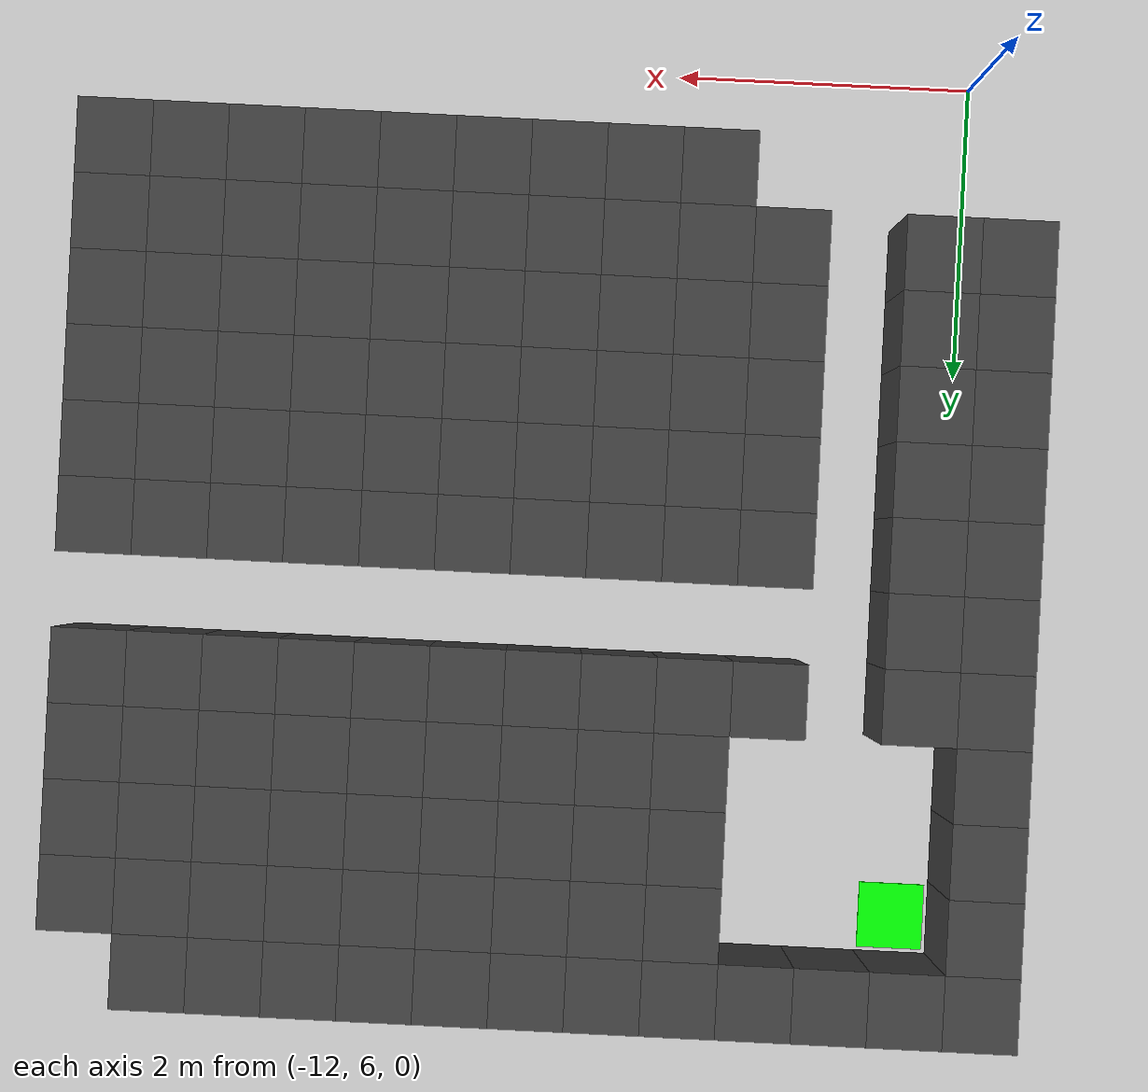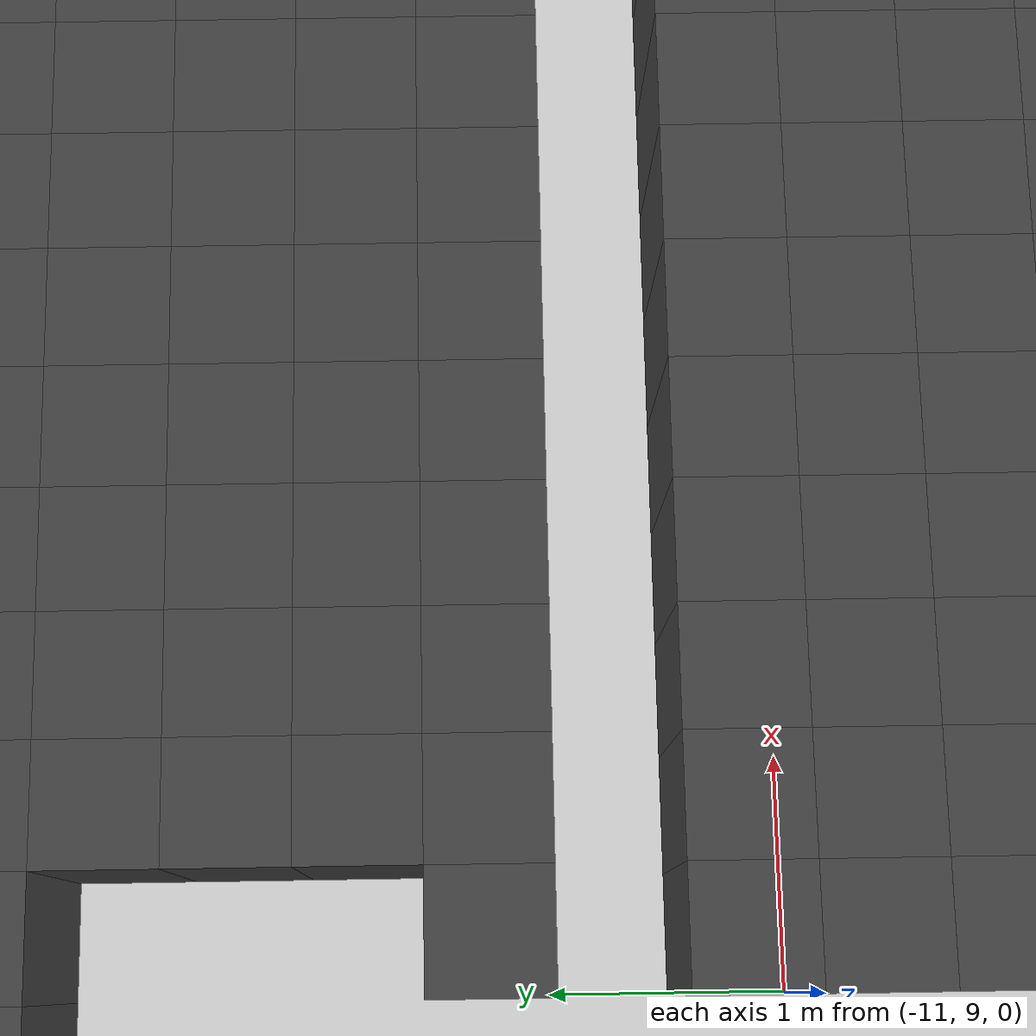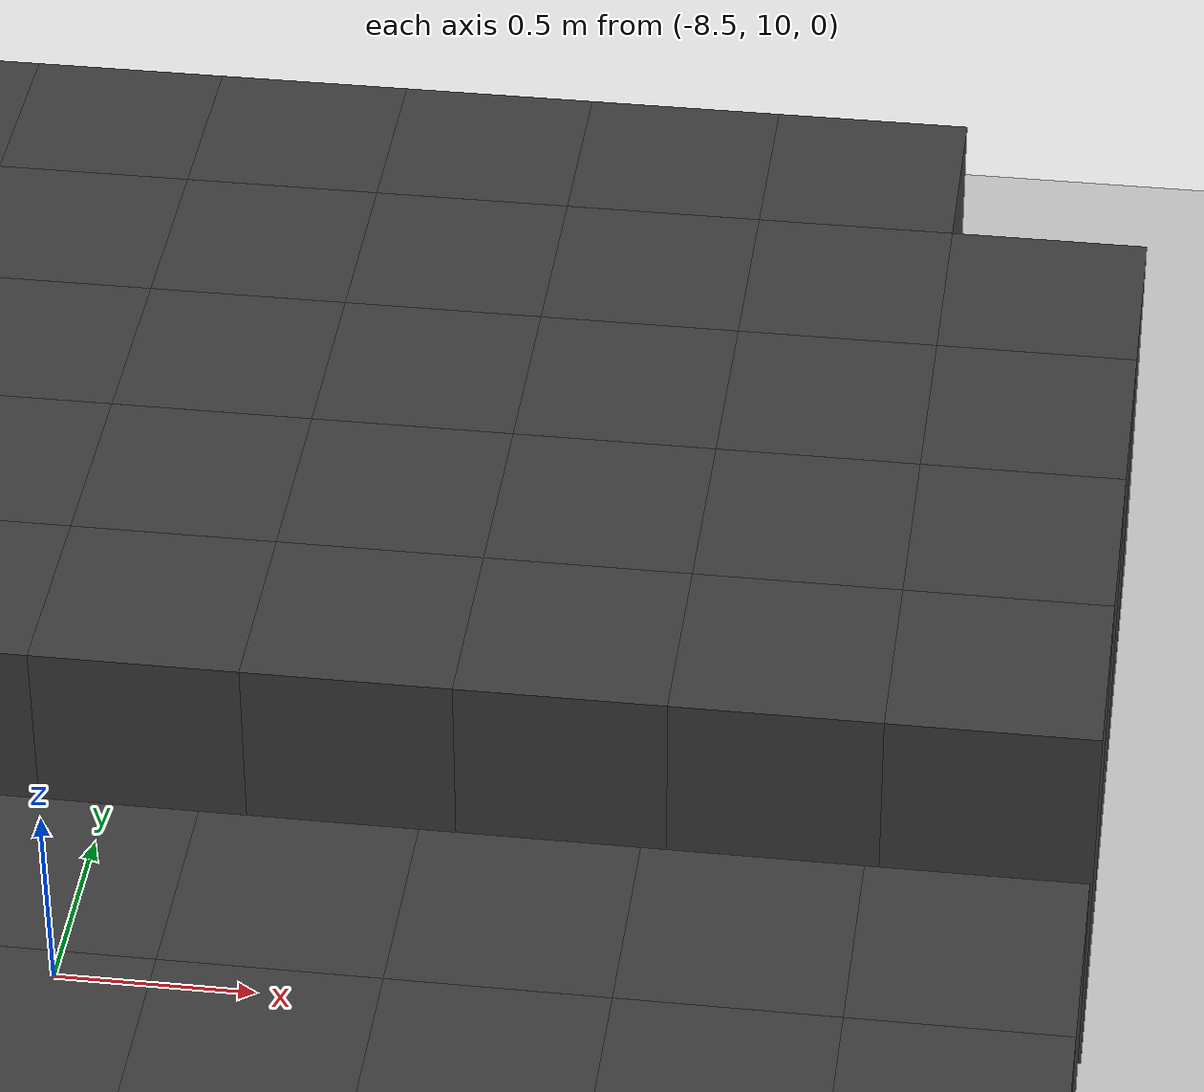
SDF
<sdf version="1.7">
 <world name="map_14190">
  <model name="ground_plane">
   <static>true</static>
   <link name="link">
    <collision name="collision">
     <geometry><plane><normal>0 0 1</normal><size>200 200</size></plane></geometry>
    </collision>
    <visual name="visual">
     <geometry><plane><normal>0 0 1</normal><size>200 200</size></plane></geometry>
     <material><ambient>0.8 0.8 0.8 1</ambient><diffuse>0.8 0.8 0.8 1</diffuse></material>
    </visual>
   </link>
  </model>
  <model name="maze_environment">
   <static>true</static>
   <link name="wall_0">
    <pose>-12.250 12.250 0.500 0 0 0</pose>
    <collision name="col"><geometry><box><size>0.5 0.5 1.0</size></box></geometry></collision>
    <visual name="vis">
     <geometry><box><size>0.5 0.5 1.0</size></box></geometry>
     <material><ambient>0.15 0.15 0.15 1</ambient><diffuse>0.25 0.25 0.25 1</diffuse></material>
    </visual>
   </link>
   <link name="wall_1">
    <pose>-11.750 12.250 0.500 0 0 0</pose>
    <collision name="col"><geometry><box><size>0.5 0.5 1.0</size></box></geometry></collision>
    <visual name="vis">
     <geometry><box><size>0.5 0.5 1.0</size></box></geometry>
     <material><ambient>0.15 0.15 0.15 1</ambient><diffuse>0.25 0.25 0.25 1</diffuse></material>
    </visual>
   </link>
   <link name="wall_2">
    <pose>-11.250 12.250 0.500 0 0 0</pose>
    <collision name="col"><geometry><box><size>0.5 0.5 1.0</size></box></geometry></collision>
    <visual name="vis">
     <geometry><box><size>0.5 0.5 1.0</size></box></geometry>
     <material><ambient>0.15 0.15 0.15 1</ambient><diffuse>0.25 0.25 0.25 1</diffuse></material>
    </visual>
   </link>
   <link name="wall_3">
    <pose>-10.750 12.250 0.500 0 0 0</pose>
    <collision name="col"><geometry><box><size>0.5 0.5 1.0</size></box></geometry></collision>
    <visual name="vis">
     <geometry><box><size>0.5 0.5 1.0</size></box></geometry>
     <material><ambient>0.15 0.15 0.15 1</ambient><diffuse>0.25 0.25 0.25 1</diffuse></material>
    </visual>
   </link>
   <link name="wall_4">
    <pose>-10.250 12.250 0.500 0 0 0</pose>
    <collision name="col"><geometry><box><size>0.5 0.5 1.0</size></box></geometry></collision>
    <visual name="vis">
     <geometry><box><size>0.5 0.5 1.0</size></box></geometry>
     <material><ambient>0.15 0.15 0.15 1</ambient><diffuse>0.25 0.25 0.25 1</diffuse></material>
    </visual>
   </link>
   <link name="wall_5">
    <pose>-9.750 12.250 0.500 0 0 0</pose>
    <collision name="col"><geometry><box><size>0.5 0.5 1.0</size></box></geometry></collision>
    <visual name="vis">
     <geometry><box><size>0.5 0.5 1.0</size></box></geometry>
     <material><ambient>0.15 0.15 0.15 1</ambient><diffuse>0.25 0.25 0.25 1</diffuse></material>
    </visual>
   </link>
   <link name="wall_6">
    <pose>-9.250 12.250 0.500 0 0 0</pose>
    <collision name="col"><geometry><box><size>0.5 0.5 1.0</size></box></geometry></collision>
    <visual name="vis">
     <geometry><box><size>0.5 0.5 1.0</size></box></geometry>
     <material><ambient>0.15 0.15 0.15 1</ambient><diffuse>0.25 0.25 0.25 1</diffuse></material>
    </visual>
   </link>
   <link name="wall_7">
    <pose>-8.750 12.250 0.500 0 0 0</pose>
    <collision name="col"><geometry><box><size>0.5 0.5 1.0</size></box></geometry></collision>
    <visual name="vis">
     <geometry><box><size>0.5 0.5 1.0</size></box></geometry>
     <material><ambient>0.15 0.15 0.15 1</ambient><diffuse>0.25 0.25 0.25 1</diffuse></material>
    </visual>
   </link>
   <link name="wall_8">
    <pose>-8.250 12.250 0.500 0 0 0</pose>
    <collision name="col"><geometry><box><size>0.5 0.5 1.0</size></box></geometry></collision>
    <visual name="vis">
     <geometry><box><size>0.5 0.5 1.0</size></box></geometry>
     <material><ambient>0.15 0.15 0.15 1</ambient><diffuse>0.25 0.25 0.25 1</diffuse></material>
    </visual>
   </link>
   <link name="wall_9">
    <pose>-7.750 12.250 0.500 0 0 0</pose>
    <collision name="col"><geometry><box><size>0.5 0.5 1.0</size></box></geometry></collision>
    <visual name="vis">
     <geometry><box><size>0.5 0.5 1.0</size></box></geometry>
     <material><ambient>0.15 0.15 0.15 1</ambient><diffuse>0.25 0.25 0.25 1</diffuse></material>
    </visual>
   </link>
   <link name="wall_10">
    <pose>-7.250 12.250 0.500 0 0 0</pose>
    <collision name="col"><geometry><box><size>0.5 0.5 1.0</size></box></geometry></collision>
    <visual name="vis">
     <geometry><box><size>0.5 0.5 1.0</size></box></geometry>
     <material><ambient>0.15 0.15 0.15 1</ambient><diffuse>0.25 0.25 0.25 1</diffuse></material>
    </visual>
   </link>
   <link name="wall_11">
    <pose>-6.750 12.250 0.500 0 0 0</pose>
    <collision name="col"><geometry><box><size>0.5 0.5 1.0</size></box></geometry></collision>
    <visual name="vis">
     <geometry><box><size>0.5 0.5 1.0</size></box></geometry>
     <material><ambient>0.15 0.15 0.15 1</ambient><diffuse>0.25 0.25 0.25 1</diffuse></material>
    </visual>
   </link>
   <link name="wall_50">
    <pose>-12.250 11.750 0.500 0 0 0</pose>
    <collision name="col"><geometry><box><size>0.5 0.5 1.0</size></box></geometry></collision>
    <visual name="vis">
     <geometry><box><size>0.5 0.5 1.0</size></box></geometry>
     <material><ambient>0.15 0.15 0.15 1</ambient><diffuse>0.25 0.25 0.25 1</diffuse></material>
    </visual>
   </link>
   <link name="wall_51">
    <pose>-10.250 11.750 0.500 0 0 0</pose>
    <collision name="col"><geometry><box><size>0.5 0.5 1.0</size></box></geometry></collision>
    <visual name="vis">
     <geometry><box><size>0.5 0.5 1.0</size></box></geometry>
     <material><ambient>0.15 0.15 0.15 1</ambient><diffuse>0.25 0.25 0.25 1</diffuse></material>
    </visual>
   </link>
   <link name="wall_52">
    <pose>-9.750 11.750 0.500 0 0 0</pose>
    <collision name="col"><geometry><box><size>0.5 0.5 1.0</size></box></geometry></collision>
    <visual name="vis">
     <geometry><box><size>0.5 0.5 1.0</size></box></geometry>
     <material><ambient>0.15 0.15 0.15 1</ambient><diffuse>0.25 0.25 0.25 1</diffuse></material>
    </visual>
   </link>
   <link name="wall_53">
    <pose>-9.250 11.750 0.500 0 0 0</pose>
    <collision name="col"><geometry><box><size>0.5 0.5 1.0</size></box></geometry></collision>
    <visual name="vis">
     <geometry><box><size>0.5 0.5 1.0</size></box></geometry>
     <material><ambient>0.15 0.15 0.15 1</ambient><diffuse>0.25 0.25 0.25 1</diffuse></material>
    </visual>
   </link>
   <link name="wall_54">
    <pose>-8.750 11.750 0.500 0 0 0</pose>
    <collision name="col"><geometry><box><size>0.5 0.5 1.0</size></box></geometry></collision>
    <visual name="vis">
     <geometry><box><size>0.5 0.5 1.0</size></box></geometry>
     <material><ambient>0.15 0.15 0.15 1</ambient><diffuse>0.25 0.25 0.25 1</diffuse></material>
    </visual>
   </link>
   <link name="wall_55">
    <pose>-8.250 11.750 0.500 0 0 0</pose>
    <collision name="col"><geometry><box><size>0.5 0.5 1.0</size></box></geometry></collision>
    <visual name="vis">
     <geometry><box><size>0.5 0.5 1.0</size></box></geometry>
     <material><ambient>0.15 0.15 0.15 1</ambient><diffuse>0.25 0.25 0.25 1</diffuse></material>
    </visual>
   </link>
   <link name="wall_56">
    <pose>-7.750 11.750 0.500 0 0 0</pose>
    <collision name="col"><geometry><box><size>0.5 0.5 1.0</size></box></geometry></collision>
    <visual name="vis">
     <geometry><box><size>0.5 0.5 1.0</size></box></geometry>
     <material><ambient>0.15 0.15 0.15 1</ambient><diffuse>0.25 0.25 0.25 1</diffuse></material>
    </visual>
   </link>
   <link name="wall_57">
    <pose>-7.250 11.750 0.500 0 0 0</pose>
    <collision name="col"><geometry><box><size>0.5 0.5 1.0</size></box></geometry></collision>
    <visual name="vis">
     <geometry><box><size>0.5 0.5 1.0</size></box></geometry>
     <material><ambient>0.15 0.15 0.15 1</ambient><diffuse>0.25 0.25 0.25 1</diffuse></material>
    </visual>
   </link>
   <link name="wall_58">
    <pose>-6.750 11.750 0.500 0 0 0</pose>
    <collision name="col"><geometry><box><size>0.5 0.5 1.0</size></box></geometry></collision>
    <visual name="vis">
     <geometry><box><size>0.5 0.5 1.0</size></box></geometry>
     <material><ambient>0.15 0.15 0.15 1</ambient><diffuse>0.25 0.25 0.25 1</diffuse></material>
    </visual>
   </link>
   <link name="wall_59">
    <pose>-6.250 11.750 0.500 0 0 0</pose>
    <collision name="col"><geometry><box><size>0.5 0.5 1.0</size></box></geometry></collision>
    <visual name="vis">
     <geometry><box><size>0.5 0.5 1.0</size></box></geometry>
     <material><ambient>0.15 0.15 0.15 1</ambient><diffuse>0.25 0.25 0.25 1</diffuse></material>
    </visual>
   </link>
   <link name="wall_97">
    <pose>-12.250 11.250 0.500 0 0 0</pose>
    <collision name="col"><geometry><box><size>0.5 0.5 1.0</size></box></geometry></collision>
    <visual name="vis">
     <geometry><box><size>0.5 0.5 1.0</size></box></geometry>
     <material><ambient>0.15 0.15 0.15 1</ambient><diffuse>0.25 0.25 0.25 1</diffuse></material>
    </visual>
   </link>
   <link name="wall_98">
    <pose>-10.250 11.250 0.500 0 0 0</pose>
    <collision name="col"><geometry><box><size>0.5 0.5 1.0</size></box></geometry></collision>
    <visual name="vis">
     <geometry><box><size>0.5 0.5 1.0</size></box></geometry>
     <material><ambient>0.15 0.15 0.15 1</ambient><diffuse>0.25 0.25 0.25 1</diffuse></material>
    </visual>
   </link>
   <link name="wall_99">
    <pose>-9.750 11.250 0.500 0 0 0</pose>
    <collision name="col"><geometry><box><size>0.5 0.5 1.0</size></box></geometry></collision>
    <visual name="vis">
     <geometry><box><size>0.5 0.5 1.0</size></box></geometry>
     <material><ambient>0.15 0.15 0.15 1</ambient><diffuse>0.25 0.25 0.25 1</diffuse></material>
    </visual>
   </link>
   <link name="wall_100">
    <pose>-9.250 11.250 0.500 0 0 0</pose>
    <collision name="col"><geometry><box><size>0.5 0.5 1.0</size></box></geometry></collision>
    <visual name="vis">
     <geometry><box><size>0.5 0.5 1.0</size></box></geometry>
     <material><ambient>0.15 0.15 0.15 1</ambient><diffuse>0.25 0.25 0.25 1</diffuse></material>
    </visual>
   </link>
   <link name="wall_101">
    <pose>-8.750 11.250 0.500 0 0 0</pose>
    <collision name="col"><geometry><box><size>0.5 0.5 1.0</size></box></geometry></collision>
    <visual name="vis">
     <geometry><box><size>0.5 0.5 1.0</size></box></geometry>
     <material><ambient>0.15 0.15 0.15 1</ambient><diffuse>0.25 0.25 0.25 1</diffuse></material>
    </visual>
   </link>
   <link name="wall_102">
    <pose>-8.250 11.250 0.500 0 0 0</pose>
    <collision name="col"><geometry><box><size>0.5 0.5 1.0</size></box></geometry></collision>
    <visual name="vis">
     <geometry><box><size>0.5 0.5 1.0</size></box></geometry>
     <material><ambient>0.15 0.15 0.15 1</ambient><diffuse>0.25 0.25 0.25 1</diffuse></material>
    </visual>
   </link>
   <link name="wall_103">
    <pose>-7.750 11.250 0.500 0 0 0</pose>
    <collision name="col"><geometry><box><size>0.5 0.5 1.0</size></box></geometry></collision>
    <visual name="vis">
     <geometry><box><size>0.5 0.5 1.0</size></box></geometry>
     <material><ambient>0.15 0.15 0.15 1</ambient><diffuse>0.25 0.25 0.25 1</diffuse></material>
    </visual>
   </link>
   <link name="wall_104">
    <pose>-7.250 11.250 0.500 0 0 0</pose>
    <collision name="col"><geometry><box><size>0.5 0.5 1.0</size></box></geometry></collision>
    <visual name="vis">
     <geometry><box><size>0.5 0.5 1.0</size></box></geometry>
     <material><ambient>0.15 0.15 0.15 1</ambient><diffuse>0.25 0.25 0.25 1</diffuse></material>
    </visual>
   </link>
   <link name="wall_105">
    <pose>-6.750 11.250 0.500 0 0 0</pose>
    <collision name="col"><geometry><box><size>0.5 0.5 1.0</size></box></geometry></collision>
    <visual name="vis">
     <geometry><box><size>0.5 0.5 1.0</size></box></geometry>
     <material><ambient>0.15 0.15 0.15 1</ambient><diffuse>0.25 0.25 0.25 1</diffuse></material>
    </visual>
   </link>
   <link name="wall_106">
    <pose>-6.250 11.250 0.500 0 0 0</pose>
    <collision name="col"><geometry><box><size>0.5 0.5 1.0</size></box></geometry></collision>
    <visual name="vis">
     <geometry><box><size>0.5 0.5 1.0</size></box></geometry>
     <material><ambient>0.15 0.15 0.15 1</ambient><diffuse>0.25 0.25 0.25 1</diffuse></material>
    </visual>
   </link>
   <link name="wall_140">
    <pose>-12.250 10.750 0.500 0 0 0</pose>
    <collision name="col"><geometry><box><size>0.5 0.5 1.0</size></box></geometry></collision>
    <visual name="vis">
     <geometry><box><size>0.5 0.5 1.0</size></box></geometry>
     <material><ambient>0.15 0.15 0.15 1</ambient><diffuse>0.25 0.25 0.25 1</diffuse></material>
    </visual>
   </link>
   <link name="wall_141">
    <pose>-10.250 10.750 0.500 0 0 0</pose>
    <collision name="col"><geometry><box><size>0.5 0.5 1.0</size></box></geometry></collision>
    <visual name="vis">
     <geometry><box><size>0.5 0.5 1.0</size></box></geometry>
     <material><ambient>0.15 0.15 0.15 1</ambient><diffuse>0.25 0.25 0.25 1</diffuse></material>
    </visual>
   </link>
   <link name="wall_142">
    <pose>-9.750 10.750 0.500 0 0 0</pose>
    <collision name="col"><geometry><box><size>0.5 0.5 1.0</size></box></geometry></collision>
    <visual name="vis">
     <geometry><box><size>0.5 0.5 1.0</size></box></geometry>
     <material><ambient>0.15 0.15 0.15 1</ambient><diffuse>0.25 0.25 0.25 1</diffuse></material>
    </visual>
   </link>
   <link name="wall_143">
    <pose>-9.250 10.750 0.500 0 0 0</pose>
    <collision name="col"><geometry><box><size>0.5 0.5 1.0</size></box></geometry></collision>
    <visual name="vis">
     <geometry><box><size>0.5 0.5 1.0</size></box></geometry>
     <material><ambient>0.15 0.15 0.15 1</ambient><diffuse>0.25 0.25 0.25 1</diffuse></material>
    </visual>
   </link>
   <link name="wall_144">
    <pose>-8.750 10.750 0.500 0 0 0</pose>
    <collision name="col"><geometry><box><size>0.5 0.5 1.0</size></box></geometry></collision>
    <visual name="vis">
     <geometry><box><size>0.5 0.5 1.0</size></box></geometry>
     <material><ambient>0.15 0.15 0.15 1</ambient><diffuse>0.25 0.25 0.25 1</diffuse></material>
    </visual>
   </link>
   <link name="wall_145">
    <pose>-8.250 10.750 0.500 0 0 0</pose>
    <collision name="col"><geometry><box><size>0.5 0.5 1.0</size></box></geometry></collision>
    <visual name="vis">
     <geometry><box><size>0.5 0.5 1.0</size></box></geometry>
     <material><ambient>0.15 0.15 0.15 1</ambient><diffuse>0.25 0.25 0.25 1</diffuse></material>
    </visual>
   </link>
   <link name="wall_146">
    <pose>-7.750 10.750 0.500 0 0 0</pose>
    <collision name="col"><geometry><box><size>0.5 0.5 1.0</size></box></geometry></collision>
    <visual name="vis">
     <geometry><box><size>0.5 0.5 1.0</size></box></geometry>
     <material><ambient>0.15 0.15 0.15 1</ambient><diffuse>0.25 0.25 0.25 1</diffuse></material>
    </visual>
   </link>
   <link name="wall_147">
    <pose>-7.250 10.750 0.500 0 0 0</pose>
    <collision name="col"><geometry><box><size>0.5 0.5 1.0</size></box></geometry></collision>
    <visual name="vis">
     <geometry><box><size>0.5 0.5 1.0</size></box></geometry>
     <material><ambient>0.15 0.15 0.15 1</ambient><diffuse>0.25 0.25 0.25 1</diffuse></material>
    </visual>
   </link>
   <link name="wall_148">
    <pose>-6.750 10.750 0.500 0 0 0</pose>
    <collision name="col"><geometry><box><size>0.5 0.5 1.0</size></box></geometry></collision>
    <visual name="vis">
     <geometry><box><size>0.5 0.5 1.0</size></box></geometry>
     <material><ambient>0.15 0.15 0.15 1</ambient><diffuse>0.25 0.25 0.25 1</diffuse></material>
    </visual>
   </link>
   <link name="wall_149">
    <pose>-6.250 10.750 0.500 0 0 0</pose>
    <collision name="col"><geometry><box><size>0.5 0.5 1.0</size></box></geometry></collision>
    <visual name="vis">
     <geometry><box><size>0.5 0.5 1.0</size></box></geometry>
     <material><ambient>0.15 0.15 0.15 1</ambient><diffuse>0.25 0.25 0.25 1</diffuse></material>
    </visual>
   </link>
   <link name="wall_183">
    <pose>-12.250 10.250 0.500 0 0 0</pose>
    <collision name="col"><geometry><box><size>0.5 0.5 1.0</size></box></geometry></collision>
    <visual name="vis">
     <geometry><box><size>0.5 0.5 1.0</size></box></geometry>
     <material><ambient>0.15 0.15 0.15 1</ambient><diffuse>0.25 0.25 0.25 1</diffuse></material>
    </visual>
   </link>
   <link name="wall_184">
    <pose>-11.750 10.250 0.500 0 0 0</pose>
    <collision name="col"><geometry><box><size>0.5 0.5 1.0</size></box></geometry></collision>
    <visual name="vis">
     <geometry><box><size>0.5 0.5 1.0</size></box></geometry>
     <material><ambient>0.15 0.15 0.15 1</ambient><diffuse>0.25 0.25 0.25 1</diffuse></material>
    </visual>
   </link>
   <link name="wall_185">
    <pose>-10.750 10.250 0.500 0 0 0</pose>
    <collision name="col"><geometry><box><size>0.5 0.5 1.0</size></box></geometry></collision>
    <visual name="vis">
     <geometry><box><size>0.5 0.5 1.0</size></box></geometry>
     <material><ambient>0.15 0.15 0.15 1</ambient><diffuse>0.25 0.25 0.25 1</diffuse></material>
    </visual>
   </link>
   <link name="wall_186">
    <pose>-10.250 10.250 0.500 0 0 0</pose>
    <collision name="col"><geometry><box><size>0.5 0.5 1.0</size></box></geometry></collision>
    <visual name="vis">
     <geometry><box><size>0.5 0.5 1.0</size></box></geometry>
     <material><ambient>0.15 0.15 0.15 1</ambient><diffuse>0.25 0.25 0.25 1</diffuse></material>
    </visual>
   </link>
   <link name="wall_187">
    <pose>-9.750 10.250 0.500 0 0 0</pose>
    <collision name="col"><geometry><box><size>0.5 0.5 1.0</size></box></geometry></collision>
    <visual name="vis">
     <geometry><box><size>0.5 0.5 1.0</size></box></geometry>
     <material><ambient>0.15 0.15 0.15 1</ambient><diffuse>0.25 0.25 0.25 1</diffuse></material>
    </visual>
   </link>
   <link name="wall_188">
    <pose>-9.250 10.250 0.500 0 0 0</pose>
    <collision name="col"><geometry><box><size>0.5 0.5 1.0</size></box></geometry></collision>
    <visual name="vis">
     <geometry><box><size>0.5 0.5 1.0</size></box></geometry>
     <material><ambient>0.15 0.15 0.15 1</ambient><diffuse>0.25 0.25 0.25 1</diffuse></material>
    </visual>
   </link>
   <link name="wall_189">
    <pose>-8.750 10.250 0.500 0 0 0</pose>
    <collision name="col"><geometry><box><size>0.5 0.5 1.0</size></box></geometry></collision>
    <visual name="vis">
     <geometry><box><size>0.5 0.5 1.0</size></box></geometry>
     <material><ambient>0.15 0.15 0.15 1</ambient><diffuse>0.25 0.25 0.25 1</diffuse></material>
    </visual>
   </link>
   <link name="wall_190">
    <pose>-8.250 10.250 0.500 0 0 0</pose>
    <collision name="col"><geometry><box><size>0.5 0.5 1.0</size></box></geometry></collision>
    <visual name="vis">
     <geometry><box><size>0.5 0.5 1.0</size></box></geometry>
     <material><ambient>0.15 0.15 0.15 1</ambient><diffuse>0.25 0.25 0.25 1</diffuse></material>
    </visual>
   </link>
   <link name="wall_191">
    <pose>-7.750 10.250 0.500 0 0 0</pose>
    <collision name="col"><geometry><box><size>0.5 0.5 1.0</size></box></geometry></collision>
    <visual name="vis">
     <geometry><box><size>0.5 0.5 1.0</size></box></geometry>
     <material><ambient>0.15 0.15 0.15 1</ambient><diffuse>0.25 0.25 0.25 1</diffuse></material>
    </visual>
   </link>
   <link name="wall_192">
    <pose>-7.250 10.250 0.500 0 0 0</pose>
    <collision name="col"><geometry><box><size>0.5 0.5 1.0</size></box></geometry></collision>
    <visual name="vis">
     <geometry><box><size>0.5 0.5 1.0</size></box></geometry>
     <material><ambient>0.15 0.15 0.15 1</ambient><diffuse>0.25 0.25 0.25 1</diffuse></material>
    </visual>
   </link>
   <link name="wall_193">
    <pose>-6.750 10.250 0.500 0 0 0</pose>
    <collision name="col"><geometry><box><size>0.5 0.5 1.0</size></box></geometry></collision>
    <visual name="vis">
     <geometry><box><size>0.5 0.5 1.0</size></box></geometry>
     <material><ambient>0.15 0.15 0.15 1</ambient><diffuse>0.25 0.25 0.25 1</diffuse></material>
    </visual>
   </link>
   <link name="wall_194">
    <pose>-6.250 10.250 0.500 0 0 0</pose>
    <collision name="col"><geometry><box><size>0.5 0.5 1.0</size></box></geometry></collision>
    <visual name="vis">
     <geometry><box><size>0.5 0.5 1.0</size></box></geometry>
     <material><ambient>0.15 0.15 0.15 1</ambient><diffuse>0.25 0.25 0.25 1</diffuse></material>
    </visual>
   </link>
   <link name="wall_228">
    <pose>-12.250 9.750 0.500 0 0 0</pose>
    <collision name="col"><geometry><box><size>0.5 0.5 1.0</size></box></geometry></collision>
    <visual name="vis">
     <geometry><box><size>0.5 0.5 1.0</size></box></geometry>
     <material><ambient>0.15 0.15 0.15 1</ambient><diffuse>0.25 0.25 0.25 1</diffuse></material>
    </visual>
   </link>
   <link name="wall_229">
    <pose>-11.750 9.750 0.500 0 0 0</pose>
    <collision name="col"><geometry><box><size>0.5 0.5 1.0</size></box></geometry></collision>
    <visual name="vis">
     <geometry><box><size>0.5 0.5 1.0</size></box></geometry>
     <material><ambient>0.15 0.15 0.15 1</ambient><diffuse>0.25 0.25 0.25 1</diffuse></material>
    </visual>
   </link>
   <link name="wall_257">
    <pose>-12.250 9.250 0.500 0 0 0</pose>
    <collision name="col"><geometry><box><size>0.5 0.5 1.0</size></box></geometry></collision>
    <visual name="vis">
     <geometry><box><size>0.5 0.5 1.0</size></box></geometry>
     <material><ambient>0.15 0.15 0.15 1</ambient><diffuse>0.25 0.25 0.25 1</diffuse></material>
    </visual>
   </link>
   <link name="wall_258">
    <pose>-11.750 9.250 0.500 0 0 0</pose>
    <collision name="col"><geometry><box><size>0.5 0.5 1.0</size></box></geometry></collision>
    <visual name="vis">
     <geometry><box><size>0.5 0.5 1.0</size></box></geometry>
     <material><ambient>0.15 0.15 0.15 1</ambient><diffuse>0.25 0.25 0.25 1</diffuse></material>
    </visual>
   </link>
   <link name="wall_259">
    <pose>-10.750 9.250 0.500 0 0 0</pose>
    <collision name="col"><geometry><box><size>0.5 0.5 1.0</size></box></geometry></collision>
    <visual name="vis">
     <geometry><box><size>0.5 0.5 1.0</size></box></geometry>
     <material><ambient>0.15 0.15 0.15 1</ambient><diffuse>0.25 0.25 0.25 1</diffuse></material>
    </visual>
   </link>
   <link name="wall_260">
    <pose>-10.250 9.250 0.500 0 0 0</pose>
    <collision name="col"><geometry><box><size>0.5 0.5 1.0</size></box></geometry></collision>
    <visual name="vis">
     <geometry><box><size>0.5 0.5 1.0</size></box></geometry>
     <material><ambient>0.15 0.15 0.15 1</ambient><diffuse>0.25 0.25 0.25 1</diffuse></material>
    </visual>
   </link>
   <link name="wall_261">
    <pose>-9.750 9.250 0.500 0 0 0</pose>
    <collision name="col"><geometry><box><size>0.5 0.5 1.0</size></box></geometry></collision>
    <visual name="vis">
     <geometry><box><size>0.5 0.5 1.0</size></box></geometry>
     <material><ambient>0.15 0.15 0.15 1</ambient><diffuse>0.25 0.25 0.25 1</diffuse></material>
    </visual>
   </link>
   <link name="wall_262">
    <pose>-9.250 9.250 0.500 0 0 0</pose>
    <collision name="col"><geometry><box><size>0.5 0.5 1.0</size></box></geometry></collision>
    <visual name="vis">
     <geometry><box><size>0.5 0.5 1.0</size></box></geometry>
     <material><ambient>0.15 0.15 0.15 1</ambient><diffuse>0.25 0.25 0.25 1</diffuse></material>
    </visual>
   </link>
   <link name="wall_263">
    <pose>-8.750 9.250 0.500 0 0 0</pose>
    <collision name="col"><geometry><box><size>0.5 0.5 1.0</size></box></geometry></collision>
    <visual name="vis">
     <geometry><box><size>0.5 0.5 1.0</size></box></geometry>
     <material><ambient>0.15 0.15 0.15 1</ambient><diffuse>0.25 0.25 0.25 1</diffuse></material>
    </visual>
   </link>
   <link name="wall_264">
    <pose>-8.250 9.250 0.500 0 0 0</pose>
    <collision name="col"><geometry><box><size>0.5 0.5 1.0</size></box></geometry></collision>
    <visual name="vis">
     <geometry><box><size>0.5 0.5 1.0</size></box></geometry>
     <material><ambient>0.15 0.15 0.15 1</ambient><diffuse>0.25 0.25 0.25 1</diffuse></material>
    </visual>
   </link>
   <link name="wall_265">
    <pose>-7.750 9.250 0.500 0 0 0</pose>
    <collision name="col"><geometry><box><size>0.5 0.5 1.0</size></box></geometry></collision>
    <visual name="vis">
     <geometry><box><size>0.5 0.5 1.0</size></box></geometry>
     <material><ambient>0.15 0.15 0.15 1</ambient><diffuse>0.25 0.25 0.25 1</diffuse></material>
    </visual>
   </link>
   <link name="wall_266">
    <pose>-7.250 9.250 0.500 0 0 0</pose>
    <collision name="col"><geometry><box><size>0.5 0.5 1.0</size></box></geometry></collision>
    <visual name="vis">
     <geometry><box><size>0.5 0.5 1.0</size></box></geometry>
     <material><ambient>0.15 0.15 0.15 1</ambient><diffuse>0.25 0.25 0.25 1</diffuse></material>
    </visual>
   </link>
   <link name="wall_267">
    <pose>-6.750 9.250 0.500 0 0 0</pose>
    <collision name="col"><geometry><box><size>0.5 0.5 1.0</size></box></geometry></collision>
    <visual name="vis">
     <geometry><box><size>0.5 0.5 1.0</size></box></geometry>
     <material><ambient>0.15 0.15 0.15 1</ambient><diffuse>0.25 0.25 0.25 1</diffuse></material>
    </visual>
   </link>
   <link name="wall_268">
    <pose>-6.250 9.250 0.500 0 0 0</pose>
    <collision name="col"><geometry><box><size>0.5 0.5 1.0</size></box></geometry></collision>
    <visual name="vis">
     <geometry><box><size>0.5 0.5 1.0</size></box></geometry>
     <material><ambient>0.15 0.15 0.15 1</ambient><diffuse>0.25 0.25 0.25 1</diffuse></material>
    </visual>
   </link>
   <link name="wall_297">
    <pose>-12.250 8.750 0.500 0 0 0</pose>
    <collision name="col"><geometry><box><size>0.5 0.5 1.0</size></box></geometry></collision>
    <visual name="vis">
     <geometry><box><size>0.5 0.5 1.0</size></box></geometry>
     <material><ambient>0.15 0.15 0.15 1</ambient><diffuse>0.25 0.25 0.25 1</diffuse></material>
    </visual>
   </link>
   <link name="wall_298">
    <pose>-11.750 8.750 0.500 0 0 0</pose>
    <collision name="col"><geometry><box><size>0.5 0.5 1.0</size></box></geometry></collision>
    <visual name="vis">
     <geometry><box><size>0.5 0.5 1.0</size></box></geometry>
     <material><ambient>0.15 0.15 0.15 1</ambient><diffuse>0.25 0.25 0.25 1</diffuse></material>
    </visual>
   </link>
   <link name="wall_299">
    <pose>-10.750 8.750 0.500 0 0 0</pose>
    <collision name="col"><geometry><box><size>0.5 0.5 1.0</size></box></geometry></collision>
    <visual name="vis">
     <geometry><box><size>0.5 0.5 1.0</size></box></geometry>
     <material><ambient>0.15 0.15 0.15 1</ambient><diffuse>0.25 0.25 0.25 1</diffuse></material>
    </visual>
   </link>
   <link name="wall_300">
    <pose>-10.250 8.750 0.500 0 0 0</pose>
    <collision name="col"><geometry><box><size>0.5 0.5 1.0</size></box></geometry></collision>
    <visual name="vis">
     <geometry><box><size>0.5 0.5 1.0</size></box></geometry>
     <material><ambient>0.15 0.15 0.15 1</ambient><diffuse>0.25 0.25 0.25 1</diffuse></material>
    </visual>
   </link>
   <link name="wall_301">
    <pose>-9.750 8.750 0.500 0 0 0</pose>
    <collision name="col"><geometry><box><size>0.5 0.5 1.0</size></box></geometry></collision>
    <visual name="vis">
     <geometry><box><size>0.5 0.5 1.0</size></box></geometry>
     <material><ambient>0.15 0.15 0.15 1</ambient><diffuse>0.25 0.25 0.25 1</diffuse></material>
    </visual>
   </link>
   <link name="wall_302">
    <pose>-9.250 8.750 0.500 0 0 0</pose>
    <collision name="col"><geometry><box><size>0.5 0.5 1.0</size></box></geometry></collision>
    <visual name="vis">
     <geometry><box><size>0.5 0.5 1.0</size></box></geometry>
     <material><ambient>0.15 0.15 0.15 1</ambient><diffuse>0.25 0.25 0.25 1</diffuse></material>
    </visual>
   </link>
   <link name="wall_303">
    <pose>-8.750 8.750 0.500 0 0 0</pose>
    <collision name="col"><geometry><box><size>0.5 0.5 1.0</size></box></geometry></collision>
    <visual name="vis">
     <geometry><box><size>0.5 0.5 1.0</size></box></geometry>
     <material><ambient>0.15 0.15 0.15 1</ambient><diffuse>0.25 0.25 0.25 1</diffuse></material>
    </visual>
   </link>
   <link name="wall_304">
    <pose>-8.250 8.750 0.500 0 0 0</pose>
    <collision name="col"><geometry><box><size>0.5 0.5 1.0</size></box></geometry></collision>
    <visual name="vis">
     <geometry><box><size>0.5 0.5 1.0</size></box></geometry>
     <material><ambient>0.15 0.15 0.15 1</ambient><diffuse>0.25 0.25 0.25 1</diffuse></material>
    </visual>
   </link>
   <link name="wall_305">
    <pose>-7.750 8.750 0.500 0 0 0</pose>
    <collision name="col"><geometry><box><size>0.5 0.5 1.0</size></box></geometry></collision>
    <visual name="vis">
     <geometry><box><size>0.5 0.5 1.0</size></box></geometry>
     <material><ambient>0.15 0.15 0.15 1</ambient><diffuse>0.25 0.25 0.25 1</diffuse></material>
    </visual>
   </link>
   <link name="wall_306">
    <pose>-7.250 8.750 0.500 0 0 0</pose>
    <collision name="col"><geometry><box><size>0.5 0.5 1.0</size></box></geometry></collision>
    <visual name="vis">
     <geometry><box><size>0.5 0.5 1.0</size></box></geometry>
     <material><ambient>0.15 0.15 0.15 1</ambient><diffuse>0.25 0.25 0.25 1</diffuse></material>
    </visual>
   </link>
   <link name="wall_307">
    <pose>-6.750 8.750 0.500 0 0 0</pose>
    <collision name="col"><geometry><box><size>0.5 0.5 1.0</size></box></geometry></collision>
    <visual name="vis">
     <geometry><box><size>0.5 0.5 1.0</size></box></geometry>
     <material><ambient>0.15 0.15 0.15 1</ambient><diffuse>0.25 0.25 0.25 1</diffuse></material>
    </visual>
   </link>
   <link name="wall_308">
    <pose>-6.250 8.750 0.500 0 0 0</pose>
    <collision name="col"><geometry><box><size>0.5 0.5 1.0</size></box></geometry></collision>
    <visual name="vis">
     <geometry><box><size>0.5 0.5 1.0</size></box></geometry>
     <material><ambient>0.15 0.15 0.15 1</ambient><diffuse>0.25 0.25 0.25 1</diffuse></material>
    </visual>
   </link>
   <link name="wall_331">
    <pose>-12.250 8.250 0.500 0 0 0</pose>
    <collision name="col"><geometry><box><size>0.5 0.5 1.0</size></box></geometry></collision>
    <visual name="vis">
     <geometry><box><size>0.5 0.5 1.0</size></box></geometry>
     <material><ambient>0.15 0.15 0.15 1</ambient><diffuse>0.25 0.25 0.25 1</diffuse></material>
    </visual>
   </link>
   <link name="wall_332">
    <pose>-11.750 8.250 0.500 0 0 0</pose>
    <collision name="col"><geometry><box><size>0.5 0.5 1.0</size></box></geometry></collision>
    <visual name="vis">
     <geometry><box><size>0.5 0.5 1.0</size></box></geometry>
     <material><ambient>0.15 0.15 0.15 1</ambient><diffuse>0.25 0.25 0.25 1</diffuse></material>
    </visual>
   </link>
   <link name="wall_333">
    <pose>-10.750 8.250 0.500 0 0 0</pose>
    <collision name="col"><geometry><box><size>0.5 0.5 1.0</size></box></geometry></collision>
    <visual name="vis">
     <geometry><box><size>0.5 0.5 1.0</size></box></geometry>
     <material><ambient>0.15 0.15 0.15 1</ambient><diffuse>0.25 0.25 0.25 1</diffuse></material>
    </visual>
   </link>
   <link name="wall_334">
    <pose>-10.250 8.250 0.500 0 0 0</pose>
    <collision name="col"><geometry><box><size>0.5 0.5 1.0</size></box></geometry></collision>
    <visual name="vis">
     <geometry><box><size>0.5 0.5 1.0</size></box></geometry>
     <material><ambient>0.15 0.15 0.15 1</ambient><diffuse>0.25 0.25 0.25 1</diffuse></material>
    </visual>
   </link>
   <link name="wall_335">
    <pose>-9.750 8.250 0.500 0 0 0</pose>
    <collision name="col"><geometry><box><size>0.5 0.5 1.0</size></box></geometry></collision>
    <visual name="vis">
     <geometry><box><size>0.5 0.5 1.0</size></box></geometry>
     <material><ambient>0.15 0.15 0.15 1</ambient><diffuse>0.25 0.25 0.25 1</diffuse></material>
    </visual>
   </link>
   <link name="wall_336">
    <pose>-9.250 8.250 0.500 0 0 0</pose>
    <collision name="col"><geometry><box><size>0.5 0.5 1.0</size></box></geometry></collision>
    <visual name="vis">
     <geometry><box><size>0.5 0.5 1.0</size></box></geometry>
     <material><ambient>0.15 0.15 0.15 1</ambient><diffuse>0.25 0.25 0.25 1</diffuse></material>
    </visual>
   </link>
   <link name="wall_337">
    <pose>-8.750 8.250 0.500 0 0 0</pose>
    <collision name="col"><geometry><box><size>0.5 0.5 1.0</size></box></geometry></collision>
    <visual name="vis">
     <geometry><box><size>0.5 0.5 1.0</size></box></geometry>
     <material><ambient>0.15 0.15 0.15 1</ambient><diffuse>0.25 0.25 0.25 1</diffuse></material>
    </visual>
   </link>
   <link name="wall_338">
    <pose>-8.250 8.250 0.500 0 0 0</pose>
    <collision name="col"><geometry><box><size>0.5 0.5 1.0</size></box></geometry></collision>
    <visual name="vis">
     <geometry><box><size>0.5 0.5 1.0</size></box></geometry>
     <material><ambient>0.15 0.15 0.15 1</ambient><diffuse>0.25 0.25 0.25 1</diffuse></material>
    </visual>
   </link>
   <link name="wall_339">
    <pose>-7.750 8.250 0.500 0 0 0</pose>
    <collision name="col"><geometry><box><size>0.5 0.5 1.0</size></box></geometry></collision>
    <visual name="vis">
     <geometry><box><size>0.5 0.5 1.0</size></box></geometry>
     <material><ambient>0.15 0.15 0.15 1</ambient><diffuse>0.25 0.25 0.25 1</diffuse></material>
    </visual>
   </link>
   <link name="wall_340">
    <pose>-7.250 8.250 0.500 0 0 0</pose>
    <collision name="col"><geometry><box><size>0.5 0.5 1.0</size></box></geometry></collision>
    <visual name="vis">
     <geometry><box><size>0.5 0.5 1.0</size></box></geometry>
     <material><ambient>0.15 0.15 0.15 1</ambient><diffuse>0.25 0.25 0.25 1</diffuse></material>
    </visual>
   </link>
   <link name="wall_341">
    <pose>-6.750 8.250 0.500 0 0 0</pose>
    <collision name="col"><geometry><box><size>0.5 0.5 1.0</size></box></geometry></collision>
    <visual name="vis">
     <geometry><box><size>0.5 0.5 1.0</size></box></geometry>
     <material><ambient>0.15 0.15 0.15 1</ambient><diffuse>0.25 0.25 0.25 1</diffuse></material>
    </visual>
   </link>
   <link name="wall_342">
    <pose>-6.250 8.250 0.500 0 0 0</pose>
    <collision name="col"><geometry><box><size>0.5 0.5 1.0</size></box></geometry></collision>
    <visual name="vis">
     <geometry><box><size>0.5 0.5 1.0</size></box></geometry>
     <material><ambient>0.15 0.15 0.15 1</ambient><diffuse>0.25 0.25 0.25 1</diffuse></material>
    </visual>
   </link>
   <link name="wall_362">
    <pose>-12.250 7.750 0.500 0 0 0</pose>
    <collision name="col"><geometry><box><size>0.5 0.5 1.0</size></box></geometry></collision>
    <visual name="vis">
     <geometry><box><size>0.5 0.5 1.0</size></box></geometry>
     <material><ambient>0.15 0.15 0.15 1</ambient><diffuse>0.25 0.25 0.25 1</diffuse></material>
    </visual>
   </link>
   <link name="wall_363">
    <pose>-11.750 7.750 0.500 0 0 0</pose>
    <collision name="col"><geometry><box><size>0.5 0.5 1.0</size></box></geometry></collision>
    <visual name="vis">
     <geometry><box><size>0.5 0.5 1.0</size></box></geometry>
     <material><ambient>0.15 0.15 0.15 1</ambient><diffuse>0.25 0.25 0.25 1</diffuse></material>
    </visual>
   </link>
   <link name="wall_364">
    <pose>-10.750 7.750 0.500 0 0 0</pose>
    <collision name="col"><geometry><box><size>0.5 0.5 1.0</size></box></geometry></collision>
    <visual name="vis">
     <geometry><box><size>0.5 0.5 1.0</size></box></geometry>
     <material><ambient>0.15 0.15 0.15 1</ambient><diffuse>0.25 0.25 0.25 1</diffuse></material>
    </visual>
   </link>
   <link name="wall_365">
    <pose>-10.250 7.750 0.500 0 0 0</pose>
    <collision name="col"><geometry><box><size>0.5 0.5 1.0</size></box></geometry></collision>
    <visual name="vis">
     <geometry><box><size>0.5 0.5 1.0</size></box></geometry>
     <material><ambient>0.15 0.15 0.15 1</ambient><diffuse>0.25 0.25 0.25 1</diffuse></material>
    </visual>
   </link>
   <link name="wall_366">
    <pose>-9.750 7.750 0.500 0 0 0</pose>
    <collision name="col"><geometry><box><size>0.5 0.5 1.0</size></box></geometry></collision>
    <visual name="vis">
     <geometry><box><size>0.5 0.5 1.0</size></box></geometry>
     <material><ambient>0.15 0.15 0.15 1</ambient><diffuse>0.25 0.25 0.25 1</diffuse></material>
    </visual>
   </link>
   <link name="wall_367">
    <pose>-9.250 7.750 0.500 0 0 0</pose>
    <collision name="col"><geometry><box><size>0.5 0.5 1.0</size></box></geometry></collision>
    <visual name="vis">
     <geometry><box><size>0.5 0.5 1.0</size></box></geometry>
     <material><ambient>0.15 0.15 0.15 1</ambient><diffuse>0.25 0.25 0.25 1</diffuse></material>
    </visual>
   </link>
   <link name="wall_368">
    <pose>-8.750 7.750 0.500 0 0 0</pose>
    <collision name="col"><geometry><box><size>0.5 0.5 1.0</size></box></geometry></collision>
    <visual name="vis">
     <geometry><box><size>0.5 0.5 1.0</size></box></geometry>
     <material><ambient>0.15 0.15 0.15 1</ambient><diffuse>0.25 0.25 0.25 1</diffuse></material>
    </visual>
   </link>
   <link name="wall_369">
    <pose>-8.250 7.750 0.500 0 0 0</pose>
    <collision name="col"><geometry><box><size>0.5 0.5 1.0</size></box></geometry></collision>
    <visual name="vis">
     <geometry><box><size>0.5 0.5 1.0</size></box></geometry>
     <material><ambient>0.15 0.15 0.15 1</ambient><diffuse>0.25 0.25 0.25 1</diffuse></material>
    </visual>
   </link>
   <link name="wall_370">
    <pose>-7.750 7.750 0.500 0 0 0</pose>
    <collision name="col"><geometry><box><size>0.5 0.5 1.0</size></box></geometry></collision>
    <visual name="vis">
     <geometry><box><size>0.5 0.5 1.0</size></box></geometry>
     <material><ambient>0.15 0.15 0.15 1</ambient><diffuse>0.25 0.25 0.25 1</diffuse></material>
    </visual>
   </link>
   <link name="wall_371">
    <pose>-7.250 7.750 0.500 0 0 0</pose>
    <collision name="col"><geometry><box><size>0.5 0.5 1.0</size></box></geometry></collision>
    <visual name="vis">
     <geometry><box><size>0.5 0.5 1.0</size></box></geometry>
     <material><ambient>0.15 0.15 0.15 1</ambient><diffuse>0.25 0.25 0.25 1</diffuse></material>
    </visual>
   </link>
   <link name="wall_372">
    <pose>-6.750 7.750 0.500 0 0 0</pose>
    <collision name="col"><geometry><box><size>0.5 0.5 1.0</size></box></geometry></collision>
    <visual name="vis">
     <geometry><box><size>0.5 0.5 1.0</size></box></geometry>
     <material><ambient>0.15 0.15 0.15 1</ambient><diffuse>0.25 0.25 0.25 1</diffuse></material>
    </visual>
   </link>
   <link name="wall_373">
    <pose>-6.250 7.750 0.500 0 0 0</pose>
    <collision name="col"><geometry><box><size>0.5 0.5 1.0</size></box></geometry></collision>
    <visual name="vis">
     <geometry><box><size>0.5 0.5 1.0</size></box></geometry>
     <material><ambient>0.15 0.15 0.15 1</ambient><diffuse>0.25 0.25 0.25 1</diffuse></material>
    </visual>
   </link>
   <link name="wall_395">
    <pose>-12.250 7.250 0.500 0 0 0</pose>
    <collision name="col"><geometry><box><size>0.5 0.5 1.0</size></box></geometry></collision>
    <visual name="vis">
     <geometry><box><size>0.5 0.5 1.0</size></box></geometry>
     <material><ambient>0.15 0.15 0.15 1</ambient><diffuse>0.25 0.25 0.25 1</diffuse></material>
    </visual>
   </link>
   <link name="wall_396">
    <pose>-11.750 7.250 0.500 0 0 0</pose>
    <collision name="col"><geometry><box><size>0.5 0.5 1.0</size></box></geometry></collision>
    <visual name="vis">
     <geometry><box><size>0.5 0.5 1.0</size></box></geometry>
     <material><ambient>0.15 0.15 0.15 1</ambient><diffuse>0.25 0.25 0.25 1</diffuse></material>
    </visual>
   </link>
   <link name="wall_397">
    <pose>-10.750 7.250 0.500 0 0 0</pose>
    <collision name="col"><geometry><box><size>0.5 0.5 1.0</size></box></geometry></collision>
    <visual name="vis">
     <geometry><box><size>0.5 0.5 1.0</size></box></geometry>
     <material><ambient>0.15 0.15 0.15 1</ambient><diffuse>0.25 0.25 0.25 1</diffuse></material>
    </visual>
   </link>
   <link name="wall_398">
    <pose>-10.250 7.250 0.500 0 0 0</pose>
    <collision name="col"><geometry><box><size>0.5 0.5 1.0</size></box></geometry></collision>
    <visual name="vis">
     <geometry><box><size>0.5 0.5 1.0</size></box></geometry>
     <material><ambient>0.15 0.15 0.15 1</ambient><diffuse>0.25 0.25 0.25 1</diffuse></material>
    </visual>
   </link>
   <link name="wall_399">
    <pose>-9.750 7.250 0.500 0 0 0</pose>
    <collision name="col"><geometry><box><size>0.5 0.5 1.0</size></box></geometry></collision>
    <visual name="vis">
     <geometry><box><size>0.5 0.5 1.0</size></box></geometry>
     <material><ambient>0.15 0.15 0.15 1</ambient><diffuse>0.25 0.25 0.25 1</diffuse></material>
    </visual>
   </link>
   <link name="wall_400">
    <pose>-9.250 7.250 0.500 0 0 0</pose>
    <collision name="col"><geometry><box><size>0.5 0.5 1.0</size></box></geometry></collision>
    <visual name="vis">
     <geometry><box><size>0.5 0.5 1.0</size></box></geometry>
     <material><ambient>0.15 0.15 0.15 1</ambient><diffuse>0.25 0.25 0.25 1</diffuse></material>
    </visual>
   </link>
   <link name="wall_401">
    <pose>-8.750 7.250 0.500 0 0 0</pose>
    <collision name="col"><geometry><box><size>0.5 0.5 1.0</size></box></geometry></collision>
    <visual name="vis">
     <geometry><box><size>0.5 0.5 1.0</size></box></geometry>
     <material><ambient>0.15 0.15 0.15 1</ambient><diffuse>0.25 0.25 0.25 1</diffuse></material>
    </visual>
   </link>
   <link name="wall_402">
    <pose>-8.250 7.250 0.500 0 0 0</pose>
    <collision name="col"><geometry><box><size>0.5 0.5 1.0</size></box></geometry></collision>
    <visual name="vis">
     <geometry><box><size>0.5 0.5 1.0</size></box></geometry>
     <material><ambient>0.15 0.15 0.15 1</ambient><diffuse>0.25 0.25 0.25 1</diffuse></material>
    </visual>
   </link>
   <link name="wall_403">
    <pose>-7.750 7.250 0.500 0 0 0</pose>
    <collision name="col"><geometry><box><size>0.5 0.5 1.0</size></box></geometry></collision>
    <visual name="vis">
     <geometry><box><size>0.5 0.5 1.0</size></box></geometry>
     <material><ambient>0.15 0.15 0.15 1</ambient><diffuse>0.25 0.25 0.25 1</diffuse></material>
    </visual>
   </link>
   <link name="wall_404">
    <pose>-7.250 7.250 0.500 0 0 0</pose>
    <collision name="col"><geometry><box><size>0.5 0.5 1.0</size></box></geometry></collision>
    <visual name="vis">
     <geometry><box><size>0.5 0.5 1.0</size></box></geometry>
     <material><ambient>0.15 0.15 0.15 1</ambient><diffuse>0.25 0.25 0.25 1</diffuse></material>
    </visual>
   </link>
   <link name="wall_405">
    <pose>-6.750 7.250 0.500 0 0 0</pose>
    <collision name="col"><geometry><box><size>0.5 0.5 1.0</size></box></geometry></collision>
    <visual name="vis">
     <geometry><box><size>0.5 0.5 1.0</size></box></geometry>
     <material><ambient>0.15 0.15 0.15 1</ambient><diffuse>0.25 0.25 0.25 1</diffuse></material>
    </visual>
   </link>
   <link name="wall_406">
    <pose>-6.250 7.250 0.500 0 0 0</pose>
    <collision name="col"><geometry><box><size>0.5 0.5 1.0</size></box></geometry></collision>
    <visual name="vis">
     <geometry><box><size>0.5 0.5 1.0</size></box></geometry>
     <material><ambient>0.15 0.15 0.15 1</ambient><diffuse>0.25 0.25 0.25 1</diffuse></material>
    </visual>
   </link>
   <link name="wall_427">
    <pose>-10.250 6.750 0.500 0 0 0</pose>
    <collision name="col"><geometry><box><size>0.5 0.5 1.0</size></box></geometry></collision>
    <visual name="vis">
     <geometry><box><size>0.5 0.5 1.0</size></box></geometry>
     <material><ambient>0.15 0.15 0.15 1</ambient><diffuse>0.25 0.25 0.25 1</diffuse></material>
    </visual>
   </link>
   <link name="wall_428">
    <pose>-9.750 6.750 0.500 0 0 0</pose>
    <collision name="col"><geometry><box><size>0.5 0.5 1.0</size></box></geometry></collision>
    <visual name="vis">
     <geometry><box><size>0.5 0.5 1.0</size></box></geometry>
     <material><ambient>0.15 0.15 0.15 1</ambient><diffuse>0.25 0.25 0.25 1</diffuse></material>
    </visual>
   </link>
   <link name="wall_429">
    <pose>-9.250 6.750 0.500 0 0 0</pose>
    <collision name="col"><geometry><box><size>0.5 0.5 1.0</size></box></geometry></collision>
    <visual name="vis">
     <geometry><box><size>0.5 0.5 1.0</size></box></geometry>
     <material><ambient>0.15 0.15 0.15 1</ambient><diffuse>0.25 0.25 0.25 1</diffuse></material>
    </visual>
   </link>
   <link name="wall_430">
    <pose>-8.750 6.750 0.500 0 0 0</pose>
    <collision name="col"><geometry><box><size>0.5 0.5 1.0</size></box></geometry></collision>
    <visual name="vis">
     <geometry><box><size>0.5 0.5 1.0</size></box></geometry>
     <material><ambient>0.15 0.15 0.15 1</ambient><diffuse>0.25 0.25 0.25 1</diffuse></material>
    </visual>
   </link>
   <link name="wall_431">
    <pose>-8.250 6.750 0.500 0 0 0</pose>
    <collision name="col"><geometry><box><size>0.5 0.5 1.0</size></box></geometry></collision>
    <visual name="vis">
     <geometry><box><size>0.5 0.5 1.0</size></box></geometry>
     <material><ambient>0.15 0.15 0.15 1</ambient><diffuse>0.25 0.25 0.25 1</diffuse></material>
    </visual>
   </link>
   <link name="wall_432">
    <pose>-7.750 6.750 0.500 0 0 0</pose>
    <collision name="col"><geometry><box><size>0.5 0.5 1.0</size></box></geometry></collision>
    <visual name="vis">
     <geometry><box><size>0.5 0.5 1.0</size></box></geometry>
     <material><ambient>0.15 0.15 0.15 1</ambient><diffuse>0.25 0.25 0.25 1</diffuse></material>
    </visual>
   </link>
   <link name="wall_433">
    <pose>-7.250 6.750 0.500 0 0 0</pose>
    <collision name="col"><geometry><box><size>0.5 0.5 1.0</size></box></geometry></collision>
    <visual name="vis">
     <geometry><box><size>0.5 0.5 1.0</size></box></geometry>
     <material><ambient>0.15 0.15 0.15 1</ambient><diffuse>0.25 0.25 0.25 1</diffuse></material>
    </visual>
   </link>
   <link name="wall_434">
    <pose>-6.750 6.750 0.500 0 0 0</pose>
    <collision name="col"><geometry><box><size>0.5 0.5 1.0</size></box></geometry></collision>
    <visual name="vis">
     <geometry><box><size>0.5 0.5 1.0</size></box></geometry>
     <material><ambient>0.15 0.15 0.15 1</ambient><diffuse>0.25 0.25 0.25 1</diffuse></material>
    </visual>
   </link>
   <link name="wall_435">
    <pose>-6.250 6.750 0.500 0 0 0</pose>
    <collision name="col"><geometry><box><size>0.5 0.5 1.0</size></box></geometry></collision>
    <visual name="vis">
     <geometry><box><size>0.5 0.5 1.0</size></box></geometry>
     <material><ambient>0.15 0.15 0.15 1</ambient><diffuse>0.25 0.25 0.25 1</diffuse></material>
    </visual>
   </link>
   <link name="start_zone">
    <pose>-11.750 11.750 0.005 0 0 0</pose>
    <visual name="vis">
     <geometry><box><size>0.45 0.45 0.01</size></box></geometry>
     <material>
      <ambient>0.0 1.0 0.0 1</ambient>
      <diffuse>0.0 1.0 0.0 1</diffuse>
      <emissive>0.00 0.60 0.00 1</emissive>
     </material>
    </visual>
   </link>
  </model>
 </world>
</sdf>
